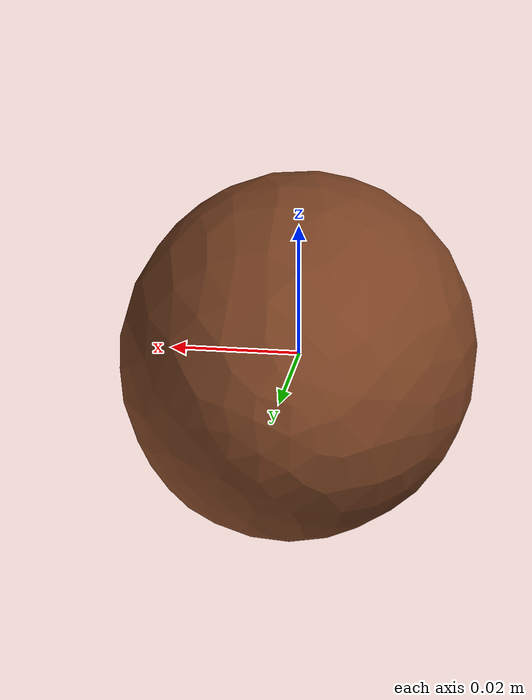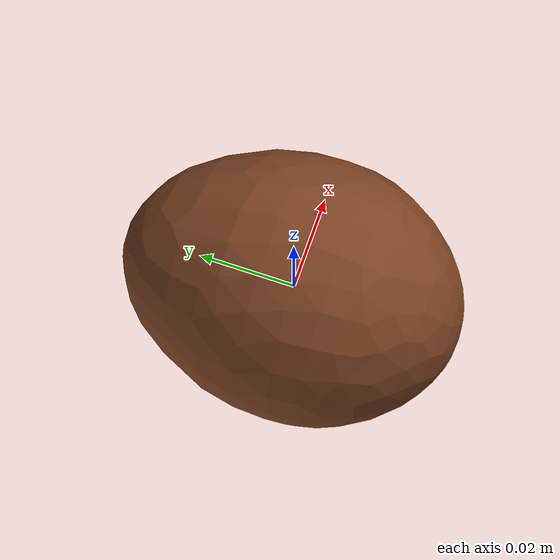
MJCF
<mujoco model="Egg_6">
  <compiler autolimits="true" boundmass="0.01" angle="radian"/>
  <default>
    <default class="/">
      <default class="__VISUAL_MJT__">
        <geom contype="0" conaffinity="0" group="0"/>
      </default>
      <default class="__STRUCTURAL_MJT__">
        <geom contype="8" conaffinity="15" group="4" friction="0.90000000000000002 0.90000000000000002 0.001" solref="0.025000000000000001 1" solimp="0.998 0.998 0.001"/>
      </default>
      <default class="__DYNAMIC_MJT__">
        <geom contype="1" conaffinity="15" group="4" friction="0.90000000000000002 0.90000000000000002 0.001" solref="0.025000000000000001 1" solimp="0.998 0.998 0.001"/>
      </default>
    </default>
  </default>
  <asset>
    <material name="material_Egg6_Mat" class="/" specular="0.5" shininess="0.5" rgba="0.48529410000000001 0.26198510000000003 0.13916519999999999 1"/>
    <mesh name="Egg_6_egg_6" class="/" file="Egg_6_egg_6/Egg_6_egg_6.obj" scale="1 1 1"/>
  </asset>
  <worldbody>
    <body name="Egg_6">
      <joint name="Egg_6_free" class="/" type="free" pos="0 0 0" axis="0 0 1" stiffness="0" range="0 0" armature="0" damping="0.10000000000000001" frictionloss="0"/>
      <body name="Egg_6_egg_6" pos="-0 0 -9.0000000000000006e-05" quat="1 0 0 0">
        <geom name="Egg_6_egg_6" class="__VISUAL_MJT__" type="mesh" material="material_Egg6_Mat" shellinertia="true" mesh="Egg_6_egg_6"/>
        <geom name="Egg_6_PrimitiveCollider_0" class="__DYNAMIC_MJT__" type="capsule" size="0.024852218106389046 0.0099564883857965469" rgba="0 1 0 1" pos="-0 0 0" quat="0.70710678118654757 0.70710678118654746 0 0"/>
      </body>
    </body>
  </worldbody>
</mujoco>
